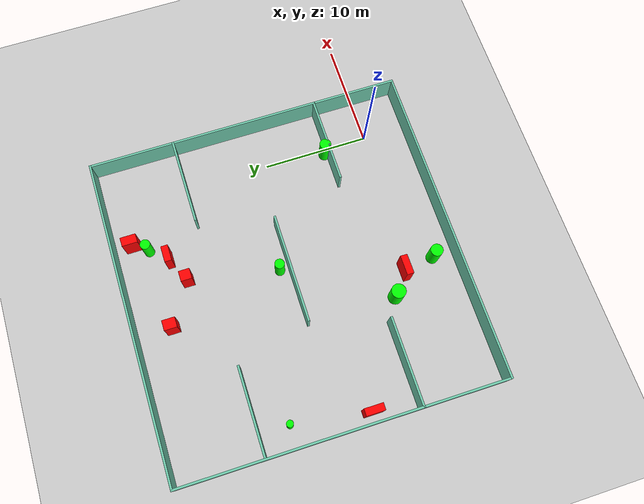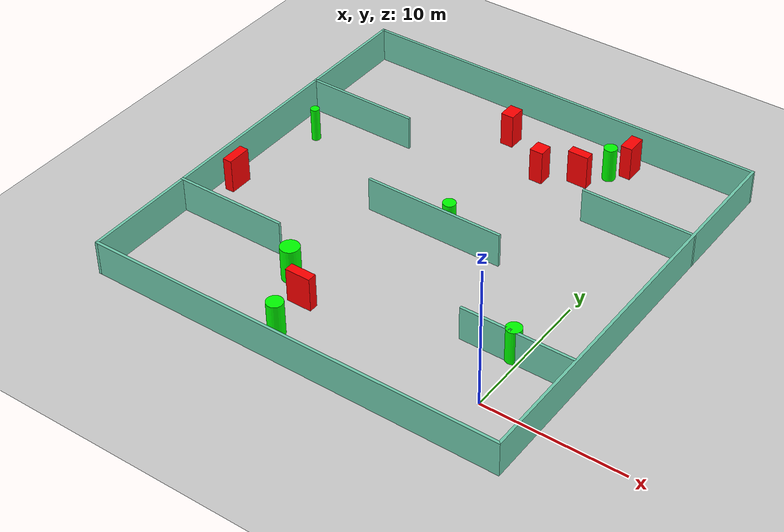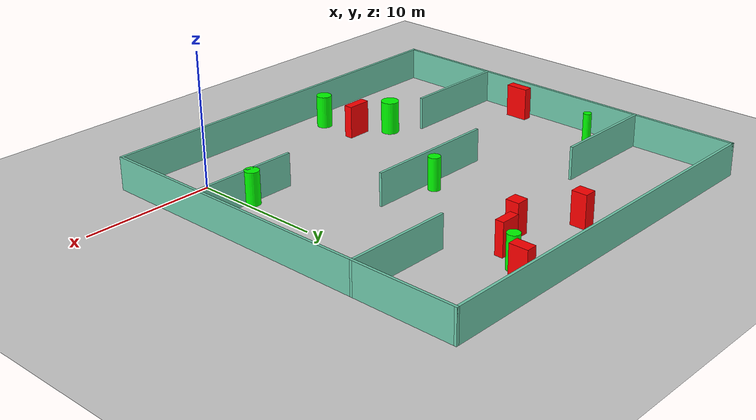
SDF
<sdf version="1.7">
 <world name="default">
  <light name="sun" type="directional">
   <pose>0 0 10 0 -0 0</pose>
   <diffuse>0.8 0.8 0.8 1</diffuse>
   <specular>0.2 0.2 0.2 1</specular>
   <attenuation>
    <range>1000</range>
    <constant>0.9</constant>
    <linear>0.01</linear>
    <quadratic>0.001</quadratic>
   </attenuation>
   <direction>-0.5 0.1 -0.9</direction>
   <spot><inner_angle>0</inner_angle><outer_angle>0</outer_angle><falloff>0</falloff></spot>
  </light>
  <model name="ground_plane">
   <static>1</static>
   <link name="link">
    <collision name="collision">
     <geometry><plane><normal>0 0 1</normal><size>100 100</size></plane></geometry>
     <surface>
      <contact><collide_bitmask>65535</collide_bitmask></contact>
      <friction><ode><mu>100</mu><mu2>50</mu2></ode></friction>
     </surface>
    </collision>
    <visual name="visual">
     <cast_shadows>0</cast_shadows>
     <geometry><plane><normal>0 0 1</normal><size>100 100</size></plane></geometry>
     <material>
      <script><uri>file://media/materials/scripts/gazebo.material</uri><name>Gazebo/Grey</name></script>
     </material>
    </visual>
   </link>
  </model>
  <gravity>0 0 -9.8</gravity>
  <magnetic_field>6e-06 2.3e-05 -4.2e-05</magnetic_field>
  <atmosphere type="adiabatic"/>
  <physics type="ode">
   <max_step_size>0.001</max_step_size>
   <real_time_factor>1</real_time_factor>
   <real_time_update_rate>1000</real_time_update_rate>
  </physics>
  <scene><ambient>0.4 0.4 0.4 1</ambient><background>0.7 0.7 0.7 1</background><shadows>1</shadows></scene>
  <spherical_coordinates>
   <surface_model>EARTH_WGS84</surface_model>
   <latitude_deg>0</latitude_deg>
   <longitude_deg>0</longitude_deg>
   <elevation>0</elevation>
   <heading_deg>0</heading_deg>
  </spherical_coordinates>
  <model name="my_base_walls">
   <link name="Wall_10">
    <collision name="Wall_10_Collision">
     <geometry><box><size>8.2 0.2 2.5</size></box></geometry>
     <pose>0 0 1.25 0 -0 0</pose>
    </collision>
    <visual name="Wall_10_Visual">
     <pose>0 0 1.25 0 -0 0</pose>
     <geometry><box><size>8.2 0.2 2.5</size></box></geometry>
     <material>
      <script><uri>file://media/materials/scripts/gazebo.material</uri><name>Gazebo/Grey</name></script>
      <ambient>0.435294 0.796078 0.67451 1</ambient>
     </material>
     <meta><layer>0</layer></meta>
    </visual>
    <pose>-11 -7 0 0 -0 0</pose>
   </link>
   <link name="Wall_12">
    <collision name="Wall_12_Collision">
     <geometry><box><size>8.2 0.2 2.5</size></box></geometry>
     <pose>0 0 1.25 0 -0 0</pose>
    </collision>
    <visual name="Wall_12_Visual">
     <pose>0 0 1.25 0 -0 0</pose>
     <geometry><box><size>8.2 0.2 2.5</size></box></geometry>
     <material>
      <script><uri>file://media/materials/scripts/gazebo.material</uri><name>Gazebo/Grey</name></script>
      <ambient>0.435294 0.796078 0.67451 1</ambient>
     </material>
     <meta><layer>0</layer></meta>
    </visual>
    <pose>-11 7 0 0 -0 0</pose>
   </link>
   <link name="Wall_14">
    <collision name="Wall_14_Collision">
     <geometry><box><size>8.2 0.2 2.5</size></box></geometry>
     <pose>0 0 1.25 0 -0 0</pose>
    </collision>
    <visual name="Wall_14_Visual">
     <pose>0 0 1.25 0 -0 0</pose>
     <geometry><box><size>8.2 0.2 2.5</size></box></geometry>
     <material>
      <script><uri>file://media/materials/scripts/gazebo.material</uri><name>Gazebo/Grey</name></script>
      <ambient>0.435294 0.796078 0.67451 1</ambient>
     </material>
     <meta><layer>0</layer></meta>
    </visual>
    <pose>11 7 0 0 -0 3.14159</pose>
   </link>
   <link name="Wall_16">
    <collision name="Wall_16_Collision">
     <geometry><box><size>10.2 0.2 2.5</size></box></geometry>
     <pose>0 0 1.25 0 -0 0</pose>
    </collision>
    <visual name="Wall_16_Visual">
     <pose>0 0 1.25 0 -0 0</pose>
     <geometry><box><size>10.2 0.2 2.5</size></box></geometry>
     <material>
      <script><uri>file://media/materials/scripts/gazebo.material</uri><name>Gazebo/Grey</name></script>
      <ambient>0.435294 0.796078 0.67451 1</ambient>
     </material>
     <meta><layer>0</layer></meta>
    </visual>
    <pose>0 0 0 0 -0 3.14159</pose>
   </link>
   <link name="Wall_2">
    <collision name="Wall_2_Collision">
     <geometry><box><size>30.2 0.2 2.5</size></box></geometry>
     <pose>0 0 1.25 0 -0 0</pose>
    </collision>
    <visual name="Wall_2_Visual">
     <pose>0 0 1.25 0 -0 0</pose>
     <geometry><box><size>30.2 0.2 2.5</size></box></geometry>
     <material>
      <script><uri>file://media/materials/scripts/gazebo.material</uri><name>Gazebo/Grey</name></script>
      <ambient>0.435294 0.796078 0.67451 1</ambient>
     </material>
     <meta><layer>0</layer></meta>
    </visual>
    <pose>0 -15 0 0 -0 3.14159</pose>
   </link>
   <link name="Wall_3">
    <collision name="Wall_3_Collision">
     <geometry><box><size>30.2 0.2 2.5</size></box></geometry>
     <pose>0 0 1.25 0 -0 0</pose>
    </collision>
    <visual name="Wall_3_Visual">
     <pose>0 0 1.25 0 -0 0</pose>
     <geometry><box><size>30.2 0.2 2.5</size></box></geometry>
     <material>
      <script><uri>file://media/materials/scripts/gazebo.material</uri><name>Gazebo/Grey</name></script>
      <ambient>0.435294 0.796078 0.67451 1</ambient>
     </material>
     <meta><layer>0</layer></meta>
    </visual>
    <pose>-15 0 0 0 -0 1.5708</pose>
   </link>
   <link name="Wall_4">
    <collision name="Wall_4_Collision">
     <geometry><box><size>30.2 0.2 2.5</size></box></geometry>
     <pose>0 0 1.25 0 -0 0</pose>
    </collision>
    <visual name="Wall_4_Visual">
     <pose>0 0 1.25 0 -0 0</pose>
     <geometry><box><size>30.2 0.2 2.5</size></box></geometry>
     <material>
      <script><uri>file://media/materials/scripts/gazebo.material</uri><name>Gazebo/Grey</name></script>
      <ambient>0.435294 0.796078 0.67451 1</ambient>
     </material>
     <meta><layer>0</layer></meta>
    </visual>
    <pose>0 15 0 0 -0 0</pose>
   </link>
   <link name="Wall_6">
    <collision name="Wall_6_Collision">
     <geometry><box><size>30.2 0.2 2.5</size></box></geometry>
     <pose>0 0 1.25 0 -0 0</pose>
    </collision>
    <visual name="Wall_6_Visual">
     <pose>0 0 1.25 0 -0 0</pose>
     <geometry><box><size>30.2 0.2 2.5</size></box></geometry>
     <material>
      <script><uri>file://media/materials/scripts/gazebo.material</uri><name>Gazebo/Grey</name></script>
      <ambient>0.435294 0.796078 0.67451 1</ambient>
     </material>
     <meta><layer>0</layer></meta>
    </visual>
    <pose>15 0 0 0 -0 1.5708</pose>
   </link>
   <link name="Wall_8">
    <collision name="Wall_8_Collision">
     <geometry><box><size>8.2 0.2 2.5</size></box></geometry>
     <pose>0 0 1.25 0 -0 0</pose>
    </collision>
    <visual name="Wall_8_Visual">
     <pose>0 0 1.25 0 -0 0</pose>
     <geometry><box><size>8.2 0.2 2.5</size></box></geometry>
     <material>
      <script><uri>file://media/materials/scripts/gazebo.material</uri><name>Gazebo/Grey</name></script>
      <ambient>0.435294 0.796078 0.67451 1</ambient>
     </material>
     <meta><layer>0</layer></meta>
    </visual>
    <pose>11 -7 0 0 -0 3.14159</pose>
   </link>
   <static>1</static>
   <pose>-11 11 0 0 -0 0</pose>
  </model>
  <model name="cylinder1">
   <static>1</static>
   <link name="link">
    <inertial>
     <mass>1</mass>
     <inertia><ixx>0.5</ixx><ixy>0</ixy><ixz>0</ixz><iyy>0.5</iyy><iyz>0</iyz><izz>1</izz></inertia>
    </inertial>
    <collision name="collision">
     <geometry><cylinder><radius>0.5368571982473817</radius><length>2.5</length></cylinder></geometry>
    </collision>
    <visual name="visual">
     <geometry><cylinder><radius>0.5368571982473817</radius><length>2.5</length></cylinder></geometry>
     <material>
      <ambient>0 1 0 1</ambient>
      <diffuse>0 1 0 1</diffuse>
      <specular>0.1 0.1 0.1 1</specular>
      <emissive>0 0 0 0</emissive>
     </material>
    </visual>
   </link>
   <pose>-0.4685353186928616 4.2860974760100525 1.25 0 0 0</pose>
  </model>
  <model name="cylinder2">
   <static>1</static>
   <link name="link">
    <inertial>
     <mass>1</mass>
     <inertia><ixx>0.5</ixx><ixy>0</ixy><ixz>0</ixz><iyy>0.5</iyy><iyz>0</iyz><izz>1</izz></inertia>
    </inertial>
    <collision name="collision">
     <geometry><cylinder><radius>0.5767507070508566</radius><length>2.5</length></cylinder></geometry>
    </collision>
    <visual name="visual">
     <geometry><cylinder><radius>0.5767507070508566</radius><length>2.5</length></cylinder></geometry>
     <material>
      <ambient>0 1 0 1</ambient>
      <diffuse>0 1 0 1</diffuse>
      <specular>0.1 0.1 0.1 1</specular>
      <emissive>0 0 0 0</emissive>
     </material>
    </visual>
   </link>
   <pose>-13.421289734786406 -1.9969939007389477 1.25 0 0 0</pose>
  </model>
  <model name="cylinder3">
   <static>1</static>
   <link name="link">
    <inertial>
     <mass>1</mass>
     <inertia><ixx>0.5</ixx><ixy>0</ixy><ixz>0</ixz><iyy>0.5</iyy><iyz>0</iyz><izz>1</izz></inertia>
    </inertial>
    <collision name="collision">
     <geometry><cylinder><radius>0.45758068236539096</radius><length>2.5</length></cylinder></geometry>
    </collision>
    <visual name="visual">
     <geometry><cylinder><radius>0.45758068236539096</radius><length>2.5</length></cylinder></geometry>
     <material>
      <ambient>0 1 0 1</ambient>
      <diffuse>0 1 0 1</diffuse>
      <specular>0.1 0.1 0.1 1</specular>
      <emissive>0 0 0 0</emissive>
     </material>
    </visual>
   </link>
   <pose>-10.369452287833399 11.902349569839334 1.25 0 0 0</pose>
  </model>
  <model name="cylinder4">
   <static>1</static>
   <link name="link">
    <inertial>
     <mass>1</mass>
     <inertia><ixx>0.5</ixx><ixy>0</ixy><ixz>0</ixz><iyy>0.5</iyy><iyz>0</iyz><izz>1</izz></inertia>
    </inertial>
    <collision name="collision">
     <geometry><cylinder><radius>0.46304323463012564</radius><length>2.5</length></cylinder></geometry>
    </collision>
    <visual name="visual">
     <geometry><cylinder><radius>0.46304323463012564</radius><length>2.5</length></cylinder></geometry>
     <material>
      <ambient>0 1 0 1</ambient>
      <diffuse>0 1 0 1</diffuse>
      <specular>0.1 0.1 0.1 1</specular>
      <emissive>0 0 0 0</emissive>
     </material>
    </visual>
   </link>
   <pose>-4.959998164202599 22.95791824440633 1.25 0 0 0</pose>
  </model>
  <model name="cylinder5">
   <static>1</static>
   <link name="link">
    <inertial>
     <mass>1</mass>
     <inertia><ixx>0.5</ixx><ixy>0</ixy><ixz>0</ixz><iyy>0.5</iyy><iyz>0</iyz><izz>1</izz></inertia>
    </inertial>
    <collision name="collision">
     <geometry><cylinder><radius>0.31495915984472456</radius><length>2.5</length></cylinder></geometry>
    </collision>
    <visual name="visual">
     <geometry><cylinder><radius>0.31495915984472456</radius><length>2.5</length></cylinder></geometry>
     <material>
      <ambient>0 1 0 1</ambient>
      <diffuse>0 1 0 1</diffuse>
      <specular>0.1 0.1 0.1 1</specular>
      <emissive>0 0 0 0</emissive>
     </material>
    </visual>
   </link>
   <pose>-23.89232123412846 15.210310180238952 1.25 0 0 0</pose>
  </model>
  <model name="cylinder6">
   <static>1</static>
   <link name="link">
    <inertial>
     <mass>1</mass>
     <inertia><ixx>0.5</ixx><ixy>0</ixy><ixz>0</ixz><iyy>0.5</iyy><iyz>0</iyz><izz>1</izz></inertia>
    </inertial>
    <collision name="collision">
     <geometry><cylinder><radius>0.6692604052953953</radius><length>2.5</length></cylinder></geometry>
    </collision>
    <visual name="visual">
     <geometry><cylinder><radius>0.6692604052953953</radius><length>2.5</length></cylinder></geometry>
     <material>
      <ambient>0 1 0 1</ambient>
      <diffuse>0 1 0 1</diffuse>
      <specular>0.1 0.1 0.1 1</specular>
      <emissive>0 0 0 0</emissive>
     </material>
    </visual>
   </link>
   <pose>-15.944830505001324 2.580941527659224 1.25 0 0 0</pose>
  </model>
  <model name="box1">
   <static>1</static>
   <link name="link">
    <inertial>
     <mass>1</mass>
     <inertia><ixx>0.083</ixx><ixy>0</ixy><ixz>0</ixz><iyy>0.083</iyy><iyz>0</iyz><izz>0.083</izz></inertia>
    </inertial>
    <collision name="collision">
     <geometry><box><size>0.9423050119698289 1.1890822989130323 2.5</size></box></geometry>
    </collision>
    <visual name="visual">
     <geometry><box><size>0.9423050119698289 1.1890822989130323 2.5</size></box></geometry>
     <material>
      <ambient>1 0 0 1</ambient>
      <diffuse>1 0 0 1</diffuse>
      <specular>0.1 0.1 0.1 1</specular>
      <emissive>0 0 0 0</emissive>
     </material>
    </visual>
    <sensor name="my_contact" type="contact">
     <contact><collision>box_collision</collision><topic>__default_topic__</topic></contact>
    </sensor>
   </link>
   <pose>-12.643593355106727 22.690820573501963 1.25 0 0 0</pose>
  </model>
  <model name="box2">
   <static>1</static>
   <link name="link">
    <inertial>
     <mass>1</mass>
     <inertia><ixx>0.083</ixx><ixy>0</ixy><ixz>0</ixz><iyy>0.083</iyy><iyz>0</iyz><izz>0.083</izz></inertia>
    </inertial>
    <collision name="collision">
     <geometry><box><size>1.501875672469543 0.6492834111137276 2.5</size></box></geometry>
    </collision>
    <visual name="visual">
     <geometry><box><size>1.501875672469543 0.6492834111137276 2.5</size></box></geometry>
     <material>
      <ambient>1 0 0 1</ambient>
      <diffuse>1 0 0 1</diffuse>
      <specular>0.1 0.1 0.1 1</specular>
      <emissive>0 0 0 0</emissive>
     </material>
    </visual>
    <sensor name="my_contact" type="contact">
     <contact><collision>box_collision</collision><topic>__default_topic__</topic></contact>
    </sensor>
   </link>
   <pose>-6.34317051627759 21.35270471187214 1.25 0 0 0</pose>
  </model>
  <model name="box3">
   <static>1</static>
   <link name="link">
    <inertial>
     <mass>1</mass>
     <inertia><ixx>0.083</ixx><ixy>0</ixy><ixz>0</ixz><iyy>0.083</iyy><iyz>0</iyz><izz>0.083</izz></inertia>
    </inertial>
    <collision name="collision">
     <geometry><box><size>1.8284560110446526 0.648481538821761 2.5</size></box></geometry>
    </collision>
    <visual name="visual">
     <geometry><box><size>1.8284560110446526 0.648481538821761 2.5</size></box></geometry>
     <material>
      <ambient>1 0 0 1</ambient>
      <diffuse>1 0 0 1</diffuse>
      <specular>0.1 0.1 0.1 1</specular>
      <emissive>0 0 0 0</emissive>
     </material>
    </visual>
    <sensor name="my_contact" type="contact">
     <contact><collision>box_collision</collision><topic>__default_topic__</topic></contact>
    </sensor>
   </link>
   <pose>-13.874874571680307 1.027510066001268 1.25 0 0 0</pose>
  </model>
  <model name="box4">
   <static>1</static>
   <link name="link">
    <inertial>
     <mass>1</mass>
     <inertia><ixx>0.083</ixx><ixy>0</ixy><ixz>0</ixz><iyy>0.083</iyy><iyz>0</iyz><izz>0.083</izz></inertia>
    </inertial>
    <collision name="collision">
     <geometry><box><size>0.8241372296946615 1.4368619803616447 2.5</size></box></geometry>
    </collision>
    <visual name="visual">
     <geometry><box><size>0.8241372296946615 1.4368619803616447 2.5</size></box></geometry>
     <material>
      <ambient>1 0 0 1</ambient>
      <diffuse>1 0 0 1</diffuse>
      <specular>0.1 0.1 0.1 1</specular>
      <emissive>0 0 0 0</emissive>
     </material>
    </visual>
    <sensor name="my_contact" type="contact">
     <contact><collision>box_collision</collision><topic>__default_topic__</topic></contact>
    </sensor>
   </link>
   <pose>-4.105418536590655 24.268092294897894 1.25 0 0 0</pose>
  </model>
  <model name="box5">
   <static>1</static>
   <link name="link">
    <inertial>
     <mass>1</mass>
     <inertia><ixx>0.083</ixx><ixy>0</ixy><ixz>0</ixz><iyy>0.083</iyy><iyz>0</iyz><izz>0.083</izz></inertia>
    </inertial>
    <collision name="collision">
     <geometry><box><size>0.9732588919803784 1.0217671609170682 2.5</size></box></geometry>
    </collision>
    <visual name="visual">
     <geometry><box><size>0.9732588919803784 1.0217671609170682 2.5</size></box></geometry>
     <material>
      <ambient>1 0 0 1</ambient>
      <diffuse>1 0 0 1</diffuse>
      <specular>0.1 0.1 0.1 1</specular>
      <emissive>0 0 0 0</emissive>
     </material>
    </visual>
    <sensor name="my_contact" type="contact">
     <contact><collision>box_collision</collision><topic>__default_topic__</topic></contact>
    </sensor>
   </link>
   <pose>-8.789630383897366 20.239078714015484 1.25 0 0 0</pose>
  </model>
  <model name="box6">
   <static>1</static>
   <link name="link">
    <inertial>
     <mass>1</mass>
     <inertia><ixx>0.083</ixx><ixy>0</ixy><ixz>0</ixz><iyy>0.083</iyy><iyz>0</iyz><izz>0.083</izz></inertia>
    </inertial>
    <collision name="collision">
     <geometry><box><size>0.6697344428221605 1.7491792476013468 2.5</size></box></geometry>
    </collision>
    <visual name="visual">
     <geometry><box><size>0.6697344428221605 1.7491792476013468 2.5</size></box></geometry>
     <material>
      <ambient>1 0 0 1</ambient>
      <diffuse>1 0 0 1</diffuse>
      <specular>0.1 0.1 0.1 1</specular>
      <emissive>0 0 0 0</emissive>
     </material>
    </visual>
    <sensor name="my_contact" type="contact">
     <contact><collision>box_collision</collision><topic>__default_topic__</topic></contact>
    </sensor>
   </link>
   <pose>-24.941280242664945 8.03476825331709 1.25 0 0 0</pose>
  </model>
 </world>
</sdf>
